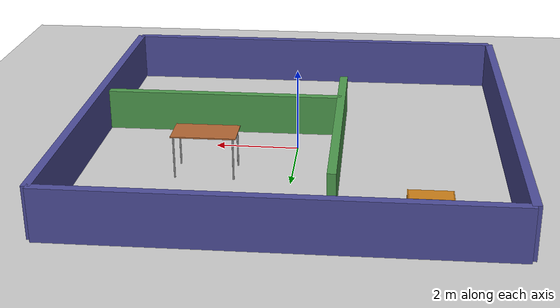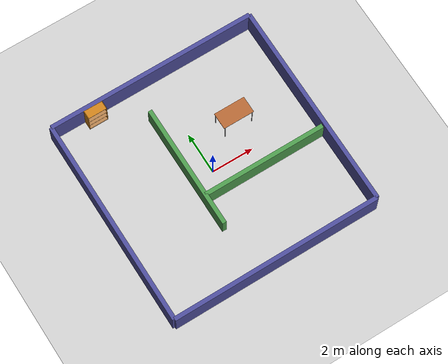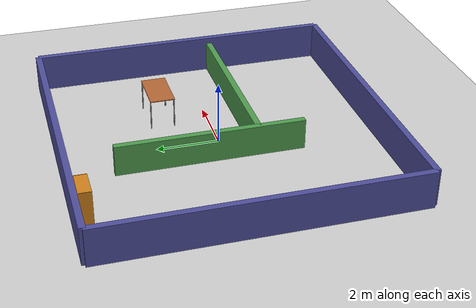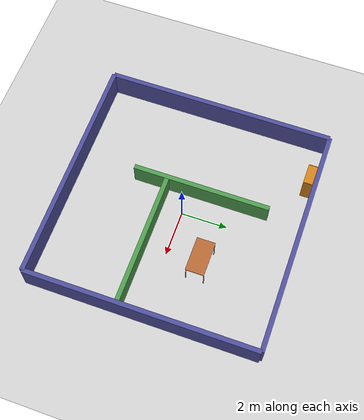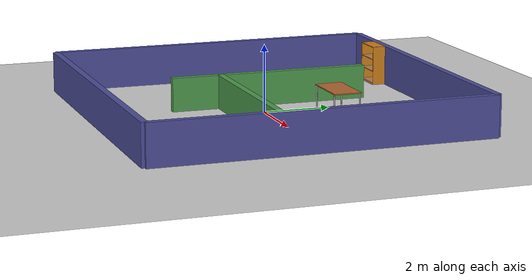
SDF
<sdf version="1.6">
 <world name="p2_world">
  <plugin filename="gz-sim-physics-system" name="gz::sim::systems::Physics"/>
  <plugin filename="gz-sim-user-commands-system" name="gz::sim::systems::UserCommands"/>
  <plugin filename="gz-sim-scene-broadcaster-system" name="gz::sim::systems::SceneBroadcaster"/>
  <plugin filename="gz-sim-sensors-system" name="gz::sim::systems::Sensors">
   <render_engine>ogre2</render_engine>
  </plugin>
  <plugin filename="gz-sim-imu-system" name="gz::sim::systems::Imu"/>
  <light type="directional" name="sun">
   <pose>0 0 10 0 0 0</pose>
   <diffuse>1 1 1 1</diffuse>
   <specular>0.5 0.5 0.5 1</specular>
   <attenuation>
    <range>1000</range>
    <constant>0.9</constant>
    <linear>0.01</linear>
    <quadratic>0.001</quadratic>
   </attenuation>
   <direction>-0.5 0.1 -0.9</direction>
  </light>
  <model name="ground_plane">
   <static>true</static>
   <link name="link">
    <collision name="collision">
     <geometry><plane><normal>0 0 1</normal><size>100 100</size></plane></geometry>
     <surface><friction><ode><mu>0.2</mu><mu2>0.2</mu2></ode></friction></surface>
    </collision>
    <visual name="visual">
     <geometry><plane><normal>0 0 1</normal><size>100 100</size></plane></geometry>
     <material>
      <ambient>0.8 0.8 0.8 1</ambient>
      <diffuse>0.8 0.8 0.8 1</diffuse>
      <specular>0.8 0.8 0.8 1</specular>
     </material>
    </visual>
   </link>
  </model>
  <model name="wall_north">
   <static>true</static>
   <pose>0 5 0.5 0 0 0</pose>
   <link name="link">
    <collision name="col">
     <geometry><box><size>10 0.2 1.4</size></box></geometry>
     <surface>
      <bounce><restitution_coefficient>0.0</restitution_coefficient><threshold>1000</threshold></bounce>
      <friction><ode><mu>0.8</mu><mu2>0.8</mu2></ode></friction>
      <contact>
       <ode>
        <kp>500000</kp>
        <kd>50</kd>
        <max_vel>0.2</max_vel>
        <min_depth>0.001</min_depth>
        <soft_cfm>0.00001</soft_cfm>
        <soft_erp>0.2</soft_erp>
       </ode>
      </contact>
     </surface>
    </collision>
    <visual name="vis">
     <geometry><box><size>10 0.2 1.4</size></box></geometry>
     <material>
      <ambient>0.2 0.2 0.9 1</ambient>
      <diffuse>0.3 0.3 0.6 1</diffuse>
      <specular>0.1 0.1 0.1 1</specular>
     </material>
    </visual>
   </link>
  </model>
  <model name="wall_south">
   <static>true</static>
   <pose>0 -5 0.5 0 0 0</pose>
   <link name="link">
    <collision name="col">
     <geometry><box><size>10 0.2 1.4</size></box></geometry>
     <surface>
      <bounce><restitution_coefficient>0.0</restitution_coefficient><threshold>1000</threshold></bounce>
      <friction><ode><mu>0.8</mu><mu2>0.8</mu2></ode></friction>
      <contact>
       <ode>
        <kp>500000</kp>
        <kd>50</kd>
        <max_vel>0.2</max_vel>
        <min_depth>0.001</min_depth>
        <soft_cfm>0.00001</soft_cfm>
        <soft_erp>0.2</soft_erp>
       </ode>
      </contact>
     </surface>
    </collision>
    <visual name="vis">
     <geometry><box><size>10 0.2 1.4</size></box></geometry>
     <material>
      <ambient>0.2 0.2 0.9 1</ambient>
      <diffuse>0.3 0.3 0.6 1</diffuse>
      <specular>0.1 0.1 0.1 1</specular>
     </material>
    </visual>
   </link>
  </model>
  <model name="wall_east">
   <static>true</static>
   <pose>5 0 0.5 0 0 0</pose>
   <link name="link">
    <collision name="col">
     <geometry><box><size>0.2 10 1.4</size></box></geometry>
     <surface>
      <bounce><restitution_coefficient>0.0</restitution_coefficient><threshold>1000</threshold></bounce>
      <friction><ode><mu>0.8</mu><mu2>0.8</mu2></ode></friction>
      <contact>
       <ode>
        <kp>500000</kp>
        <kd>50</kd>
        <max_vel>0.2</max_vel>
        <min_depth>0.001</min_depth>
        <soft_cfm>0.00001</soft_cfm>
        <soft_erp>0.2</soft_erp>
       </ode>
      </contact>
     </surface>
    </collision>
    <visual name="vis">
     <geometry><box><size>0.2 10 1.4</size></box></geometry>
     <material>
      <ambient>0.2 0.2 0.9 1</ambient>
      <diffuse>0.3 0.3 0.6 1</diffuse>
      <specular>0.1 0.1 0.1 1</specular>
     </material>
    </visual>
   </link>
  </model>
  <model name="wall_west">
   <static>true</static>
   <pose>-5 0 0.5 0 0 0</pose>
   <link name="link">
    <collision name="col">
     <geometry><box><size>0.2 10 1.4</size></box></geometry>
     <surface>
      <bounce><restitution_coefficient>0.0</restitution_coefficient><threshold>1000</threshold></bounce>
      <friction><ode><mu>0.8</mu><mu2>0.8</mu2></ode></friction>
      <contact>
       <ode>
        <kp>500000</kp>
        <kd>50</kd>
        <max_vel>0.2</max_vel>
        <min_depth>0.001</min_depth>
        <soft_cfm>0.00001</soft_cfm>
        <soft_erp>0.2</soft_erp>
       </ode>
      </contact>
     </surface>
    </collision>
    <visual name="vis">
     <geometry><box><size>0.2 10 1.4</size></box></geometry>
     <material>
      <ambient>0.2 0.2 0.9 1</ambient>
      <diffuse>0.3 0.3 0.6 1</diffuse>
      <specular>0.1 0.1 0.1 1</specular>
     </material>
    </visual>
   </link>
  </model>
  <model name="wall_inner_1">
   <static>true</static>
   <pose>-1.0 0.5 0.5 0 0 0</pose>
   <link name="link">
    <collision name="col">
     <geometry><box><size>0.2 6 1</size></box></geometry>
     <surface>
      <bounce><restitution_coefficient>0.0</restitution_coefficient><threshold>1000</threshold></bounce>
      <friction><ode><mu>0.8</mu><mu2>0.8</mu2></ode></friction>
      <contact>
       <ode>
        <kp>500000</kp>
        <kd>50</kd>
        <max_vel>0.2</max_vel>
        <min_depth>0.001</min_depth>
        <soft_cfm>0.00001</soft_cfm>
        <soft_erp>0.2</soft_erp>
       </ode>
      </contact>
     </surface>
    </collision>
    <visual name="vis">
     <geometry><box><size>0.2 6 1</size></box></geometry>
     <material>
      <ambient>0.2 0.9 0.2 1</ambient>
      <diffuse>0.3 0.6 0.3 1</diffuse>
      <specular>0.1 0.1 0.1 1</specular>
     </material>
    </visual>
   </link>
  </model>
  <model name="wall_inner_2">
   <static>true</static>
   <pose>2.0 -1.0 0.5 0 0 0</pose>
   <link name="link">
    <collision name="col">
     <geometry><box><size>6 0.2 1</size></box></geometry>
     <surface>
      <bounce><restitution_coefficient>0.0</restitution_coefficient><threshold>1e6</threshold></bounce>
      <friction><ode><mu>0.5</mu><mu2>0.5</mu2></ode></friction>
      <contact>
       <ode>
        <kp>200000</kp>
        <kd>200</kd>
        <max_vel>0.05</max_vel>
        <min_depth>0.003</min_depth>
        <soft_cfm>0.00001</soft_cfm>
        <soft_erp>0.2</soft_erp>
       </ode>
      </contact>
     </surface>
    </collision>
    <visual name="vis">
     <geometry><box><size>6 0.2 1</size></box></geometry>
     <material>
      <ambient>0.2 0.9 0.2 1</ambient>
      <diffuse>0.3 0.6 0.3 1</diffuse>
      <specular>0.1 0.1 0.1 1</specular>
     </material>
    </visual>
   </link>
  </model>
  <include><uri>model://table</uri><pose>2.0 1.5 0 0 0 0</pose></include>
  <include><uri>model://bookshelf</uri><pose>-3.0 4.89 0 0 0 0</pose></include>
 </world>
</sdf>

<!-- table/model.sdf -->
<sdf version="1.5">
  <model name="table">
    <static>true</static>
    <link name="link">
      <collision name="surface">
        <pose>0 0 1.0 0 0 0</pose>
        <geometry>
          <box>
            <size>1.5 0.8 0.03</size>
          </box>
        </geometry>
        <surface>
          <friction>
            <ode>
              <mu>0.6</mu>
              <mu2>0.6</mu2>
            </ode>
          </friction>
        </surface>
      </collision>
      <visual name="visual1">
        <pose>0 0 1.0 0 0 0</pose>
        <geometry>
          <box>
            <size>1.5 0.8 0.03</size>
          </box>
        </geometry>
        <material>
          <ambient>0.9 0.2 0.2 1</ambient>
          <diffuse>0.7 0.4 0.2 1</diffuse>
          <specular>0.1 0.1 0.1 1</specular>
        </material>
      </visual>
      <collision name="front_left_leg">
        <pose>0.68 0.38 0.5 0 0 0</pose>
        <geometry>
          <cylinder>
            <radius>0.02</radius>
            <length>1.0</length>
          </cylinder>
        </geometry>
      </collision>
      <visual name="front_left_leg">
        <pose>0.68 0.38 0.5 0 0 0</pose>
        <geometry>
          <cylinder>
            <radius>0.02</radius>
            <length>1.0</length>
          </cylinder>
        </geometry>
        <material>
          <script>
            <uri>file://media/materials/scripts/gazebo.material</uri>
            <name>Gazebo/Grey</name>
          </script>
        </material>
      </visual>
      <collision name="front_right_leg">
        <pose>0.68 -0.38 0.5 0 0 0</pose>
        <geometry>
          <cylinder>
            <radius>0.02</radius>
            <length>1.0</length>
          </cylinder>
        </geometry>
      </collision>
      <visual name="front_right_leg">
        <pose>0.68 -0.38 0.5 0 0 0</pose>
        <geometry>
          <cylinder>
            <radius>0.02</radius>
            <length>1.0</length>
          </cylinder>
        </geometry>
        <material>
          <script>
            <uri>file://media/materials/scripts/gazebo.material</uri>
            <name>Gazebo/Grey</name>
          </script>
        </material>
      </visual>
      <collision name="back_right_leg">
        <pose>-0.68 -0.38 0.5 0 0 0</pose>
        <geometry>
          <cylinder>
            <radius>0.02</radius>
            <length>1.0</length>
          </cylinder>
        </geometry>
      </collision>
      <visual name="back_right_leg">
        <pose>-0.68 -0.38 0.5 0 0 0</pose>
        <geometry>
          <cylinder>
            <radius>0.02</radius>
            <length>1.0</length>
          </cylinder>
        </geometry>
        <material>
          <script>
            <uri>file://media/materials/scripts/gazebo.material</uri>
            <name>Gazebo/Grey</name>
          </script>
        </material>
      </visual>
      <collision name="back_left_leg">
        <pose>-0.68 0.38 0.5 0 0 0</pose>
        <geometry>
          <cylinder>
            <radius>0.02</radius>
            <length>1.0</length>
          </cylinder>
        </geometry>
      </collision>
      <visual name="back_left_leg">
        <pose>-0.68 0.38 0.5 0 0 0</pose>
        <geometry>
          <cylinder>
            <radius>0.02</radius>
            <length>1.0</length>
          </cylinder>
        </geometry>
        <material>
          <script>
            <uri>file://media/materials/scripts/gazebo.material</uri>
            <name>Gazebo/Grey</name>
          </script>
        </material>
      </visual>
    </link>
  </model>
</sdf>

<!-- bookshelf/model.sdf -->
<sdf version="1.5">
  <model name="bookshelf">
    <static>true</static>
    <link name="link">
      <inertial>
        <mass>1.0</mass>
      </inertial>
      <collision name="back">
        <pose>0 0.005 0.6 0 0 0</pose>
        <geometry>
          <box>
            <size>0.9 0.01 1.2</size>
          </box>
        </geometry>
      </collision>
      <visual name="visual1">
        <pose>0 0.005 0.6 0 0 0</pose>
        <geometry>
          <box>
            <size>0.9 0.01 1.2</size>
          </box>
        </geometry>
        <material>
          <ambient>0.9 0.2 0.2 1</ambient>
          <diffuse>0.8 0.5 0.1 1</diffuse>
          <specular>0.1 0.1 0.1 1</specular>
        </material>
      </visual>
      <collision name="left_side">
        <pose>0.45 -0.195 0.6 0 0 0</pose>
        <geometry>
          <box>
            <size>0.02 0.4 1.2</size>
          </box>
        </geometry>
      </collision>
      <visual name="visual2">
        <pose>0.45 -0.195 0.6 0 0 0</pose>
        <geometry>
          <box>
            <size>0.02 0.4 1.2</size>
          </box>
        </geometry>
        <material>
          <ambient>0.9 0.2 0.2 1</ambient>
          <diffuse>0.8 0.5 0.1 1</diffuse>
          <specular>0.1 0.1 0.1 1</specular>
        </material>
      </visual>
      <collision name="right_side">
        <pose>-0.45 -0.195 0.6 0 0 0</pose>
        <geometry>
          <box>
            <size>0.02 0.4 1.2</size>
          </box>
        </geometry>
      </collision>
      <visual name="visual3">
        <pose>-0.45 -0.195 0.6 0 0 0</pose>
        <geometry>
          <box>
            <size>0.02 0.4 1.2</size>
          </box>
        </geometry>
        <material>
          <ambient>0.9 0.2 0.2 1</ambient>
          <diffuse>0.8 0.5 0.1 1</diffuse>
          <specular>0.1 0.1 0.1 1</specular>
        </material>
      </visual>
      <collision name="bottom">
        <pose>0 -0.195 0.03 0 0 0</pose>
        <geometry>
          <box>
            <size>0.88 0.4 0.06</size>
          </box>
        </geometry>
      </collision>
      <visual name="visual4">
        <pose>0 -0.195 0.03 0 0 0</pose>
        <geometry>
          <box>
            <size>0.88 0.4 0.06</size>
          </box>
        </geometry>
        <material>
          <script>
            <uri>file://media/materials/scripts/gazebo.material</uri>
            <name>Gazebo/Wood</name>
          </script>
        </material>
      </visual>
      <collision name="top">
        <pose>0 -0.195 1.19 0 0 0</pose>
        <geometry>
          <box>
            <size>0.88 0.4 0.02</size>
          </box>
        </geometry>
      </collision>
      <visual name="visual5">
        <pose>0 -0.195 1.19 0 0 0</pose>
        <geometry>
          <box>
            <size>0.88 0.4 0.02</size>
          </box>
        </geometry>
        <material>
          <ambient>0.9 0.2 0.2 1</ambient>
          <diffuse>0.8 0.5 0.1 1</diffuse>
          <specular>0.1 0.1 0.1 1</specular>
        </material>
      </visual>
      <collision name="low_shelf">
        <pose>0 -0.195 0.43 0 0 0</pose>
        <geometry>
          <box>
            <size>0.88 0.4 0.02</size>
          </box>
        </geometry>
      </collision>
      <visual name="visual6">
        <pose>0 -0.195 0.43 0 0 0</pose>
        <geometry>
          <box>
            <size>0.88 0.4 0.02</size>
          </box>
        </geometry>
        <material>
          <script>
            <uri>file://media/materials/scripts/gazebo.material</uri>
            <name>Gazebo/Wood</name>
          </script>
        </material>
      </visual>
      <collision name="high_shelf">
        <pose>0 -0.195 0.8 0 0 0</pose>
        <geometry>
          <box>
            <size>0.88 0.4 0.02</size>
          </box>
        </geometry>
      </collision>
      <visual name="visual7">
        <pose>0 -0.195 0.8 0 0 0</pose>
        <geometry>
          <box>
            <size>0.88 0.4 0.02</size>
          </box>
        </geometry>
        <material>
          <script>
            <uri>file://media/materials/scripts/gazebo.material</uri>
            <name>Gazebo/Wood</name>
          </script>
        </material>
      </visual>
    </link>
  </model>
</sdf>
